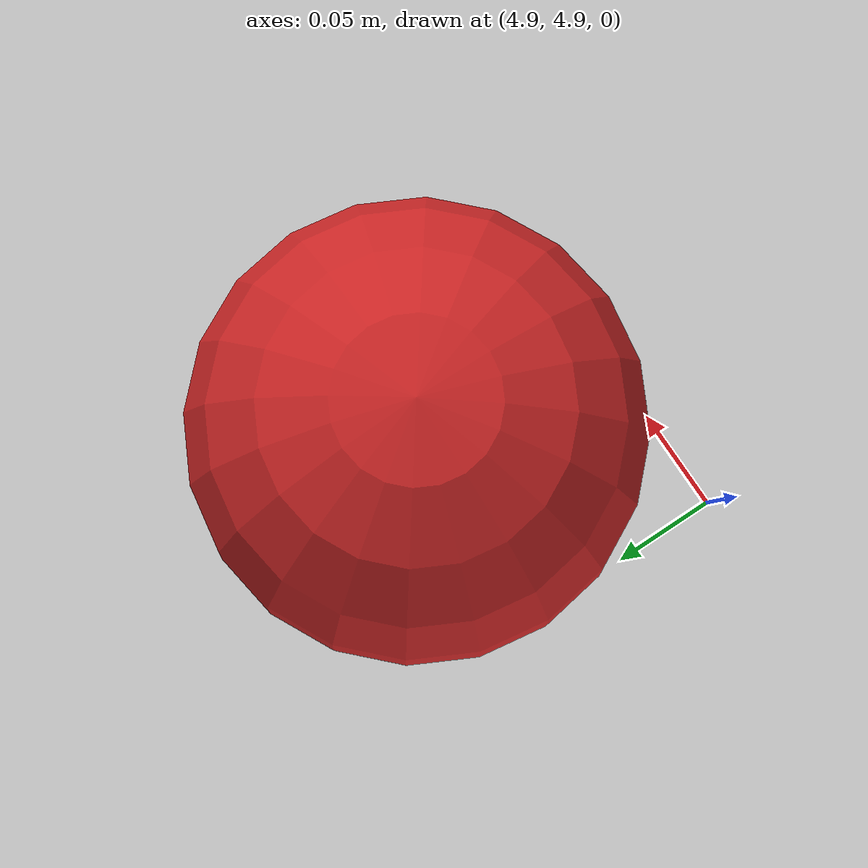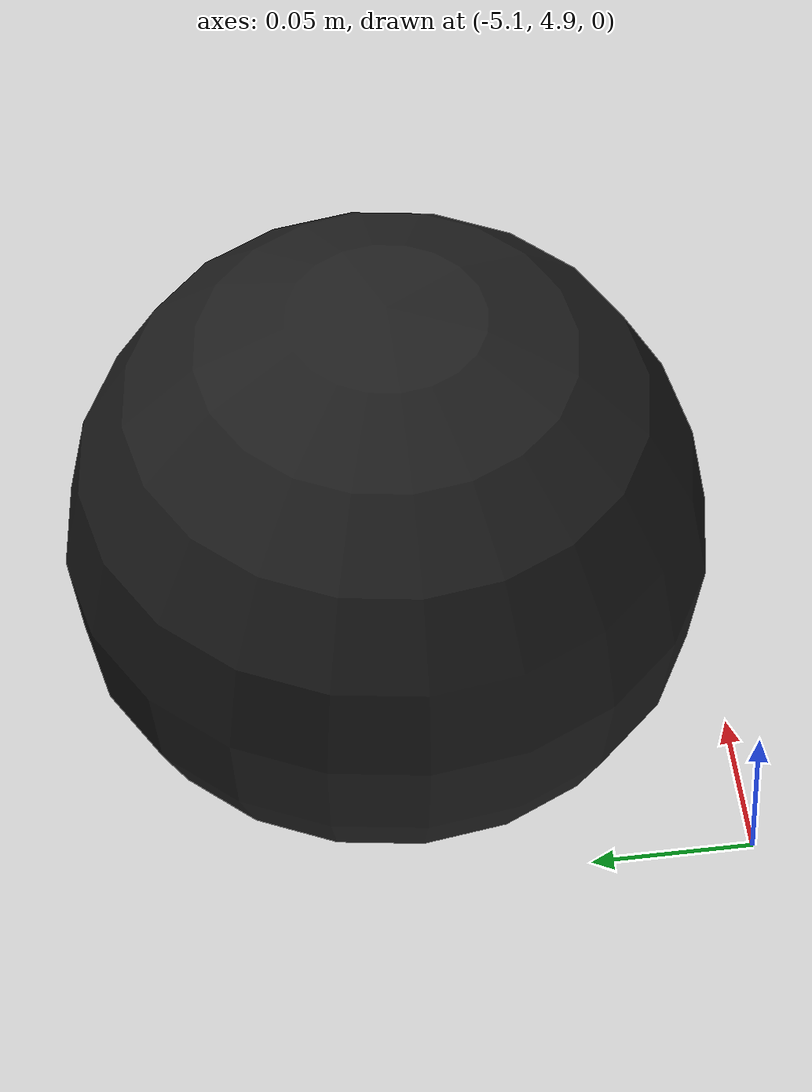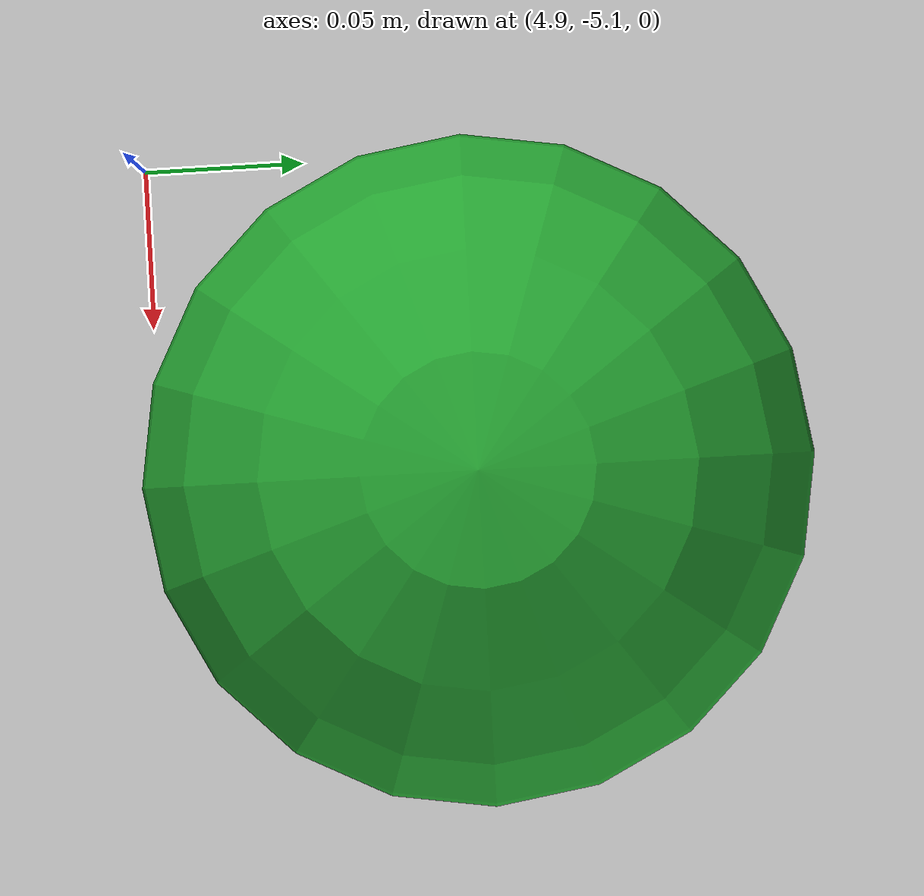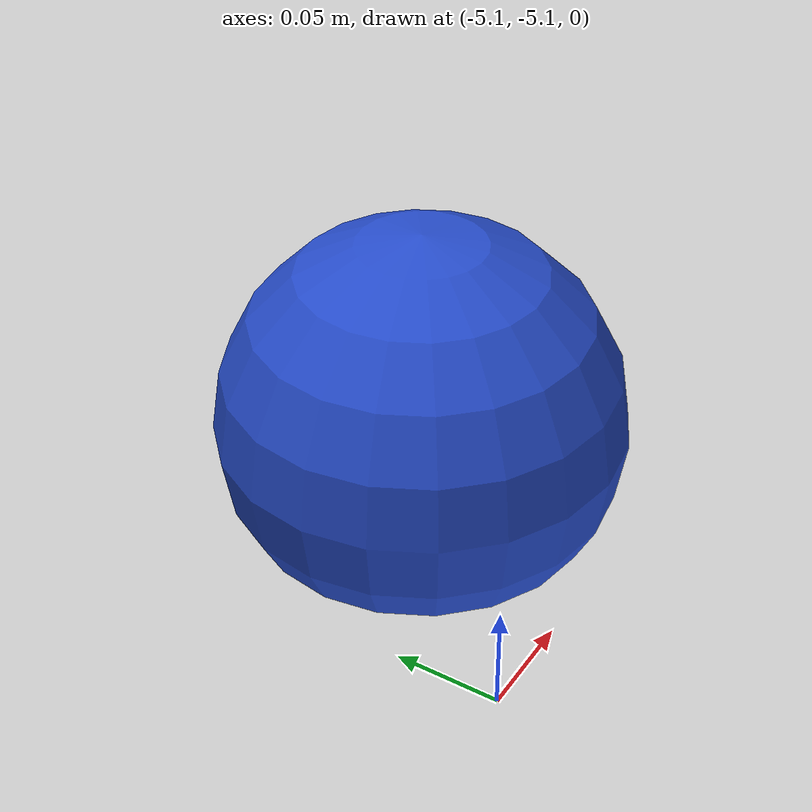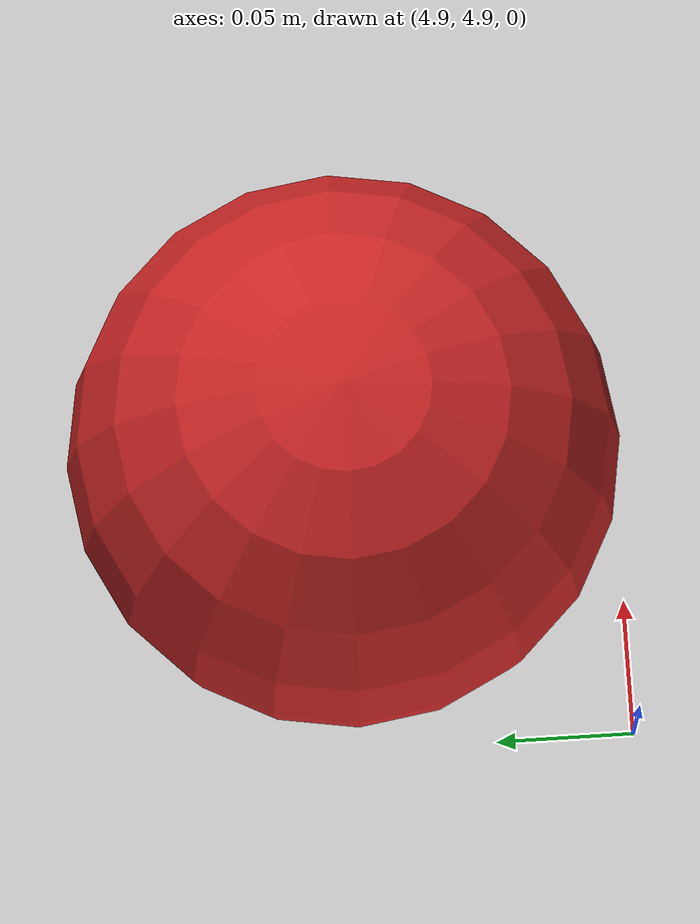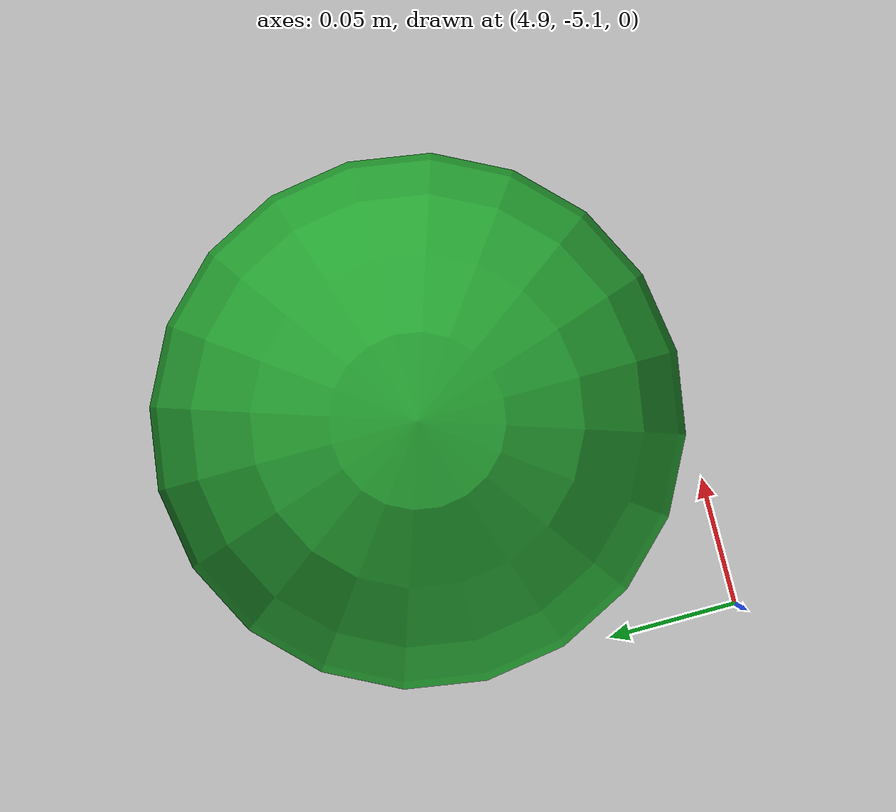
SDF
<?xml version="1.0" ?>
<sdf version='1.4'>
  <world name='Pioneer Waypoints'>
    <!-- A global light source -->
    <include>
      <uri>model://sun</uri>
    </include>
    <!-- A ground plane -->
    <include>
      <uri>model://ground_plane</uri>
    </include>

    <model name='WP1'>
      <pose>5 5 0.05 0 -0 0</pose>
      <link name='link'>
        <inertial>
          <mass>1</mass>
          <inertia>
            <ixx>1</ixx>
            <ixy>0</ixy>
            <ixz>0</ixz>
            <iyy>1</iyy>
            <iyz>0</iyz>
            <izz>1</izz>
          </inertia>
        </inertial>
        <collision name='collision'>
          <geometry>
            <sphere>
              <radius>0.1</radius>
            </sphere>
          </geometry>
          <max_contacts>10</max_contacts>
          <surface>
            <bounce/>
            <friction>
              <ode/>
            </friction>
            <contact>
              <ode/>
            </contact>
          </surface>
        </collision>
        <visual name='visual'>
          <geometry>
            <sphere>
              <radius>0.1</radius>
            </sphere>
          </geometry>
          <material>
            <script>
              <uri>file://media/materials/scripts/gazebo.material</uri>
              <name>Gazebo/Red</name>
            </script>
          </material>
        </visual>
        <velocity_decay>
          <linear>0</linear>
          <angular>0</angular>
        </velocity_decay>
        <self_collide>0</self_collide>
        <kinematic>0</kinematic>
        <gravity>1</gravity>
      </link>
      <static>0</static>
    </model>

    <model name='WP2'>
      <pose>5 -5 0.05 0 -0 0</pose>
      <link name='link'>
        <inertial>
          <mass>1</mass>
          <inertia>
            <ixx>1</ixx>
            <ixy>0</ixy>
            <ixz>0</ixz>
            <iyy>1</iyy>
            <iyz>0</iyz>
            <izz>1</izz>
          </inertia>
        </inertial>
        <collision name='collision'>
          <geometry>
            <sphere>
              <radius>0.1</radius>
            </sphere>
          </geometry>
          <max_contacts>10</max_contacts>
          <surface>
            <bounce/>
            <friction>
              <ode/>
            </friction>
            <contact>
              <ode/>
            </contact>
          </surface>
        </collision>
        <visual name='visual'>
          <geometry>
            <sphere>
              <radius>0.1</radius>
            </sphere>
          </geometry>
          <material>
            <script>
              <uri>file://media/materials/scripts/gazebo.material</uri>
              <name>Gazebo/Green</name>
            </script>
          </material>
        </visual>
        <velocity_decay>
          <linear>0</linear>
          <angular>0</angular>
        </velocity_decay>
        <self_collide>0</self_collide>
        <kinematic>0</kinematic>
        <gravity>1</gravity>
      </link>
      <static>0</static>
    </model>

    <model name='WP3'>
      <pose>-5 -5 0.05 0 -0 0</pose>
      <link name='link'>
        <inertial>
          <mass>1</mass>
          <inertia>
            <ixx>1</ixx>
            <ixy>0</ixy>
            <ixz>0</ixz>
            <iyy>1</iyy>
            <iyz>0</iyz>
            <izz>1</izz>
          </inertia>
        </inertial>
        <collision name='collision'>
          <geometry>
            <sphere>
              <radius>0.1</radius>
            </sphere>
          </geometry>
          <max_contacts>10</max_contacts>
          <surface>
            <bounce/>
            <friction>
              <ode/>
            </friction>
            <contact>
              <ode/>
            </contact>
          </surface>
        </collision>
        <visual name='visual'>
          <geometry>
            <sphere>
              <radius>0.1</radius>
            </sphere>
          </geometry>
          <material>
            <script>
              <uri>file://media/materials/scripts/gazebo.material</uri>
              <name>Gazebo/Blue</name>
            </script>
          </material>
        </visual>
        <velocity_decay>
          <linear>0</linear>
          <angular>0</angular>
        </velocity_decay>
        <self_collide>0</self_collide>
        <kinematic>0</kinematic>
        <gravity>1</gravity>
      </link>
      <static>0</static>
    </model>

    <model name='WP4'>
      <pose>-5 5 0.05 0 -0 0</pose>
      <link name='link'>
        <inertial>
          <mass>1</mass>
          <inertia>
            <ixx>1</ixx>
            <ixy>0</ixy>
            <ixz>0</ixz>
            <iyy>1</iyy>
            <iyz>0</iyz>
            <izz>1</izz>
          </inertia>
        </inertial>
        <collision name='collision'>
          <geometry>
            <sphere>
              <radius>0.1</radius>
            </sphere>
          </geometry>
          <max_contacts>10</max_contacts>
          <surface>
            <bounce/>
            <friction>
              <ode/>
            </friction>
            <contact>
              <ode/>
            </contact>
          </surface>
        </collision>
        <visual name='visual'>
          <geometry>
            <sphere>
              <radius>0.1</radius>
            </sphere>
          </geometry>
          <material>
            <script>
              <uri>file://media/materials/scripts/gazebo.material</uri>
              <name>Gazebo/Black</name>
            </script>
          </material>
        </visual>
        <velocity_decay>
          <linear>0</linear>
          <angular>0</angular>
        </velocity_decay>
        <self_collide>0</self_collide>
        <kinematic>0</kinematic>
        <gravity>1</gravity>
      </link>
      <static>0</static>
    </model>

    <gui fullscreen='0'>
      <camera name='user_camera'>
        <pose>13.8844 -11.835 5.65244 0 0.275643 2.35619</pose>
        <view_controller>orbit</view_controller>
      </camera>
    </gui>
  </world>
</sdf>
